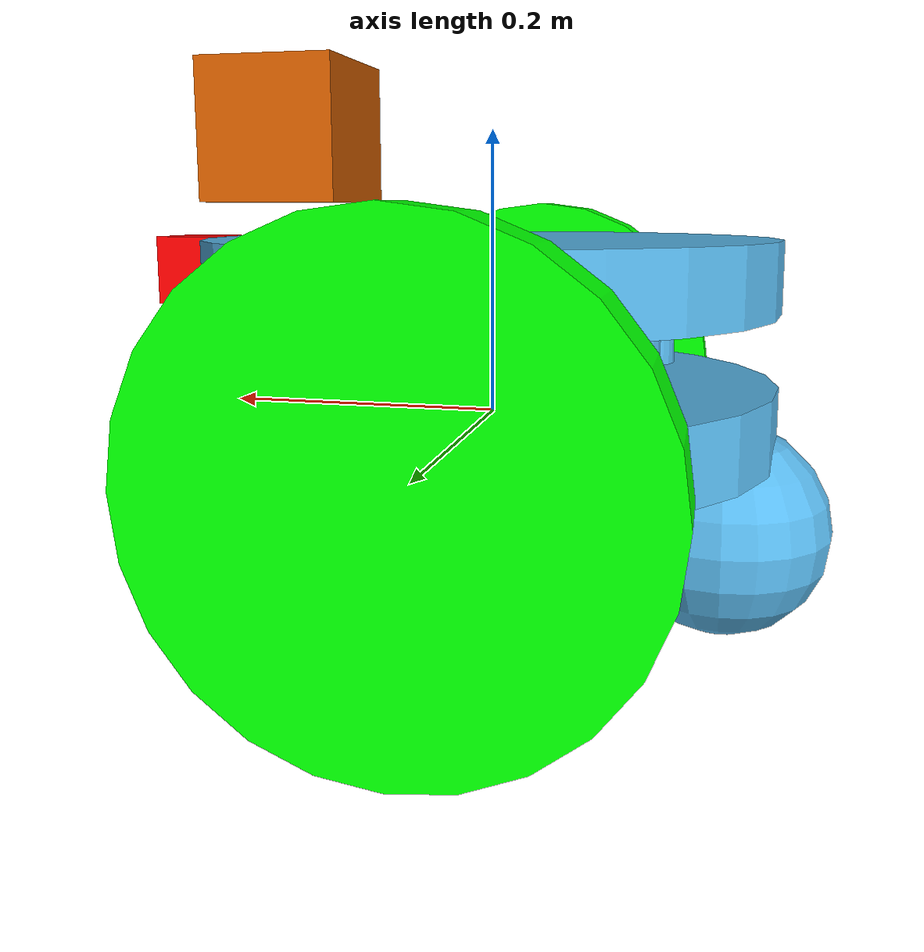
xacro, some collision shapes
<robot name="project_robot" xmlns:xacro="http://www.ros.org/wiki/xacro">

    <!-- gazebo integration -->
    <xacro:include filename="$(find my_robot)/urdf/project_robot.gazebo"/>

    <!-- import colors -->
    <xacro:include filename="$(find my_robot)/urdf/materials.xacro"/>

    <!-- xacro macros -->
    <xacro:macro name="chassis_part" params="name origin_xyz">
        <visual name="${name}_visual">
            <origin xyz="${origin_xyz}" rpy="0 0 0"/>
            <geometry>
                <cylinder radius="0.2" length="0.05"/>
            </geometry>
        </visual>
        <collision name="${name}_collision">
            <origin xyz="${origin_xyz}" rpy="0 0 0"/>
            <geometry>
                <cylinder radius="0.2" length="0.05"/>
            </geometry>
        </collision>
    </xacro:macro>

    <xacro:macro name="standoff_part" params="name origin_xyz">
        <visual name="${name}_visual">
            <origin xyz="${origin_xyz}" rpy="0 0 0"/>
            <geometry>
                <cylinder radius="0.025" length="0.1"/>
            </geometry>
        </visual>
        <collision name="${name}_collision">
            <origin xyz="${origin_xyz}" rpy="0 0 0"/>
            <geometry>
                <cylinder radius="0.025" length="0.1"/>
            </geometry>
        </collision>
    </xacro:macro>

    <xacro:macro name="caster_part" params="name origin_xyz">
        <visual name='${name}_visual'>
            <origin xyz="${origin_xyz}" rpy="0 0 0"/>
            <geometry>
                <sphere radius="0.075"/>
            </geometry>
        </visual>
        <collision name='${name}_collision'>
            <origin xyz="${origin_xyz}" rpy="0 0 0"/>
            <geometry>
                <sphere radius="0.0749"/>
            </geometry>
        </collision>
    </xacro:macro>

    <xacro:macro name="wheel" params="name origin_xyz">
        <link name="${name}">
            <pose>0 0 0 0 0 0</pose>

            <inertial>
                <mass value="5.0"/>
                <origin xyz="${origin_xyz}" rpy="0 0 0"/>
                <inertia
                    ixx="0.03" ixy="0" ixz="0"
                    iyy="0.05" iyz="0"
                    izz="0.03"
                />
            </inertial>

            <visual name="${name}_visual">
                <origin xyz="${origin_xyz}" rpy="0 1.5707 1.5707"/>
                <geometry>
                    <cylinder radius="0.15" length="0.05"/>
                </geometry>
                <material name="green"/>
            </visual>

            <collision name="${name}_collision">
                <origin xyz="${origin_xyz}" rpy="0 1.5707 1.5707"/>
                <geometry>
                    <cylinder radius="0.15" length="0.05"/>
                </geometry>
            </collision>
        </link>
    </xacro:macro>

    <!-- root footprint link and joint -->
    <link name="robot_footprint"></link>

    <joint name="robot_footprint_joint" type="fixed">
        <origin xyz="0 0 0" rpy="0 0 0" />
        <parent link="robot_footprint"/>
        <child link="chassis" />m
    </joint>

    <!-- chassis link -->
    <link name="chassis">
        <pose>0 0 0.05 0 0 0</pose>

        <inertial>
            <mass value="15"/>
            <origin xyz="0 0 0" rpy="0 0 0"/>
            <inertia
                ixx="0.2" ixy="0" ixz="0"
                iyy="0.2" iyz="0"
                izz="0.3"
            />
        </inertial>

        <!-- chassis parts -->
        <xacro:chassis_part name="chassis_bottom" origin_xyz="0 0 0"/>
        <xacro:chassis_part name="chassis_top" origin_xyz="0 0 0.1"/>

        <!-- standoffs -->
        <xacro:standoff_part name="standoff1" origin_xyz="0.1 0.1 0.05"/>
        <xacro:standoff_part name="standoff2" origin_xyz="0.1 -0.1 0.05"/>
        <xacro:standoff_part name="standoff3" origin_xyz="-0.1 0.1 0.05"/>
        <xacro:standoff_part name="standoff4" origin_xyz="-0.1 -0.1 0.05"/>

        <!-- casters -->
        <xacro:caster_part name="back_caster" origin_xyz="0.165 0 -0.075"/>
        <xacro:caster_part name="front_caster" origin_xyz="-0.165 0 -0.075"/>
    </link>

    <!-- wheel links and joints -->
    <xacro:wheel name="left_wheel" origin_xyz="0 -0.025 0"/>
    <xacro:wheel name="right_wheel" origin_xyz="0 0.025 0"/>

    <joint type="continuous" name="left_wheel_hinge">
        <origin xyz="0 0.25 0" rpy="0 0 0"/>
        <child link="left_wheel"/>
        <parent link="chassis"/>
        <axis xyz="0 1 0" rpy="0 0 0"/>
        <limit effort="10000" velocity="1000"/>
        <dynamics damping="1.0" friction="1.0"/>
    </joint>
    <joint type="continuous" name="right_wheel_hinge">
        <origin xyz="0 -0.25 0" rpy="0 0 0"/>
        <child link="right_wheel"/>
        <parent link="chassis"/>
        <axis xyz="0 1 0" rpy="0 0 0"/>
        <limit effort="10000" velocity="1000"/>
        <dynamics damping="1.0" friction="1.0"/>
    </joint>

    <!-- camera link and joint -->
    <link name="camera">
        <pose>0 0 0 0 0 0</pose>

        <inertial>
            <mass value="0.1"/>
            <origin xyz="0 0 0" rpy="0 0 0"/>
            <inertia
                ixx="1e-6" ixy="0" ixz="0"
                iyy="1e-6" iyz="0"
                izz="1e-6"
            />
        </inertial>

        <visual name="camera_visual">
            <origin xyz="0 0 0" rpy="0 0 0"/>
            <geometry>
                <box size="0.05 0.05 0.05"/>
            </geometry>
            <material name="red"/>
        </visual>
        <collision name="camera_collision">
            <origin xyz="0 0 0" rpy="0 0 0"/>
            <geometry>
                <box size="0.05 0.05 0.05"/>
            </geometry>
        </collision>
    </link>

    <joint type="fixed" name="camera_joint">
        <origin xyz="0.225 0 0.1" rpy="0 0 0"/>
        <child link="camera"/>
        <parent link="chassis"/>
        <axis xyz="0 1 0" rpy="0 0 0"/>
    </joint>

    <!-- hokuyo link and joint -->
    <link name="hokuyo">
        <pose>0 0 0 0 0 0</pose>

        <inertial>
            <mass value="1e-5"/>
            <origin xyz="0 0 0" rpy="0 0 0"/>
            <inertia
                ixx="1e-6" ixy="0" ixz="0"
                iyy="1e-6" iyz="0"
                izz="1e-6"
            />
        </inertial>

        <visual name="hokuyo_visual">
            <geometry>
                <mesh filename="package://my_robot/meshes/hokuyo.dae"/>
            </geometry>
        </visual>

        <collision name="hokuyo_collision">
            <geometry>
                <box size="0.1 0.1 0.1"/>
            </geometry>
        </collision>
    </link>

    <joint type="fixed" name="hokuyo_joint">
        <origin xyz="0.15 0 0.2" rpy="0 0 0"/>
        <child link="hokuyo"/>
        <parent link="chassis"/>
        <axis xyz="0 1 0" rpy="0 0 0"/>
    </joint>

    <!-- Set link colors -->
    <gazebo reference="left_wheel">
        <material>Gazebo/Green</material>
    </gazebo>

    <gazebo reference="right_wheel">
        <material>Gazebo/Green</material>
    </gazebo>

    <gazebo reference="camera">
        <material>Gazebo/Red</material>
    </gazebo>

</robot>

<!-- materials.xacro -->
<robot>
    <material name="blue">
        <color rgba="0.0 0.0 1.0 1.0"/>
    </material>

    <material name="green">
        <color rgba="0.0 1.0 0.0 1.0"/>
    </material>

    <material name="grey">
        <color rgba="0.2 0.2 0.2 1.0"/>
    </material>

    <material name="red">
        <color rgba="1.0 0.0 0.0 1.0"/>
    </material>
</robot>
